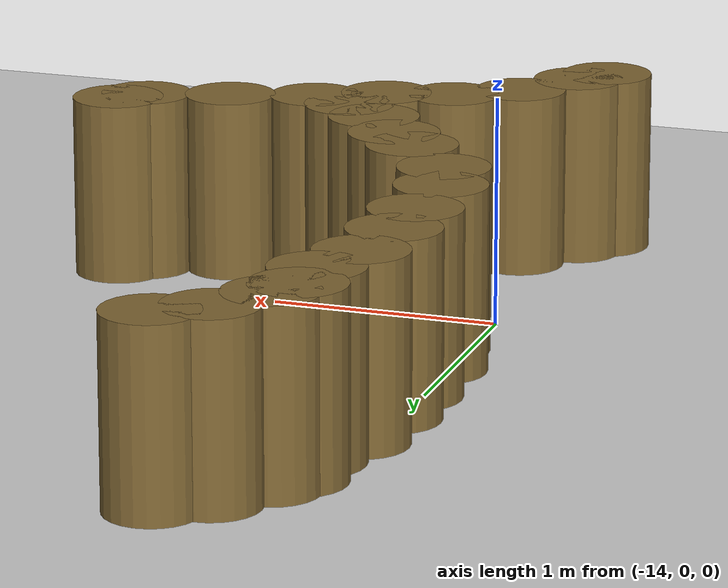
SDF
<sdf version="1.6">
 <world name="default">
  <model name="ground_plane">
   <static>1</static>
   <link name="link">
    <collision name="collision">
     <geometry><plane><normal>0 0 1</normal><size>100 100</size></plane></geometry>
     <surface><friction><ode><mu>100</mu><mu2>50</mu2></ode></friction></surface>
    </collision>
    <visual name="visual">
     <cast_shadows>0</cast_shadows>
     <geometry><plane><normal>0 0 1</normal><size>100 100</size></plane></geometry>
     <material>
      <script><uri>file://media/materials/scripts/gazebo.material</uri><name>Gazebo/Grey</name></script>
     </material>
    </visual>
   </link>
  </model>
  <model name="mini_cylinder_0_clone_0_clone_clone_clone_clone_3_clone_20_clone">
   <link name="link">
    <inertial>
     <mass>1</mass>
     <inertia><ixx>0.145833</ixx><ixy>0</ixy><ixz>0</ixz><iyy>0.145833</iyy><iyz>0</iyz><izz>0.125</izz></inertia>
    </inertial>
    <visual name="visual">
     <geometry><cylinder><radius>0.2</radius><length>0.8</length></cylinder></geometry>
     <material>
      <script><name>Gazebo/Grey</name><uri>file://media/materials/scripts/gazebo.material</uri></script>
      <shader type="vertex"><normal_map>__default__</normal_map></shader>
      <ambient>0.5 0.4 0.2 1</ambient>
      <diffuse>0.7 0.7 0.7 1</diffuse>
      <specular>0.01 0.01 0.01 1</specular>
      <emissive>0 0 0 1</emissive>
     </material>
    </visual>
    <collision name="collision">
     <geometry><cylinder><radius>0.2</radius><length>0.8</length></cylinder></geometry>
     <surface>
      <friction>
       <ode><mu>1</mu><mu2>1</mu2><fdir1>0 0 0</fdir1><slip1>0</slip1><slip2>0</slip2></ode>
       <torsional>
        <coefficient>1</coefficient>
        <patch_radius>0</patch_radius>
        <surface_radius>0</surface_radius>
        <use_patch_radius>1</use_patch_radius>
        <ode><slip>0</slip></ode>
       </torsional>
      </friction>
      <bounce><restitution_coefficient>0</restitution_coefficient><threshold>1e+06</threshold></bounce>
      <contact>
       <collide_without_contact>0</collide_without_contact>
       <collide_without_contact_bitmask>1</collide_without_contact_bitmask>
       <collide_bitmask>1</collide_bitmask>
       <ode>
        <soft_cfm>0</soft_cfm>
        <soft_erp>0.2</soft_erp>
        <kp>1e+13</kp>
        <kd>1</kd>
        <max_vel>0.01</max_vel>
        <min_depth>0</min_depth>
       </ode>
       <bullet>
        <split_impulse>1</split_impulse>
        <split_impulse_penetration_threshold>-0.01</split_impulse_penetration_threshold>
        <soft_cfm>0</soft_cfm>
        <soft_erp>0.2</soft_erp>
        <kp>1e+13</kp>
        <kd>1</kd>
       </bullet>
      </contact>
     </surface>
    </collision>
   </link>
   <static>1</static>
   <pose>-14.121 -1.29709 0.4 0 -0 0</pose>
  </model>
  <model name="mini_cylinder_0_clone_0_clone_clone_clone_clone_3_clone_20_clone_0">
   <link name="link">
    <inertial>
     <mass>1</mass>
     <inertia><ixx>0.145833</ixx><ixy>0</ixy><ixz>0</ixz><iyy>0.145833</iyy><iyz>0</iyz><izz>0.125</izz></inertia>
    </inertial>
    <visual name="visual">
     <geometry><cylinder><radius>0.2</radius><length>0.8</length></cylinder></geometry>
     <material>
      <script><name>Gazebo/Grey</name><uri>file://media/materials/scripts/gazebo.material</uri></script>
      <shader type="vertex"><normal_map>__default__</normal_map></shader>
      <ambient>0.5 0.4 0.2 1</ambient>
      <diffuse>0.7 0.7 0.7 1</diffuse>
      <specular>0.01 0.01 0.01 1</specular>
      <emissive>0 0 0 1</emissive>
     </material>
    </visual>
    <collision name="collision">
     <geometry><cylinder><radius>0.2</radius><length>0.8</length></cylinder></geometry>
     <surface>
      <friction>
       <ode><mu>1</mu><mu2>1</mu2><fdir1>0 0 0</fdir1><slip1>0</slip1><slip2>0</slip2></ode>
       <torsional>
        <coefficient>1</coefficient>
        <patch_radius>0</patch_radius>
        <surface_radius>0</surface_radius>
        <use_patch_radius>1</use_patch_radius>
        <ode><slip>0</slip></ode>
       </torsional>
      </friction>
      <bounce><restitution_coefficient>0</restitution_coefficient><threshold>1e+06</threshold></bounce>
      <contact>
       <collide_without_contact>0</collide_without_contact>
       <collide_without_contact_bitmask>1</collide_without_contact_bitmask>
       <collide_bitmask>1</collide_bitmask>
       <ode>
        <soft_cfm>0</soft_cfm>
        <soft_erp>0.2</soft_erp>
        <kp>1e+13</kp>
        <kd>1</kd>
        <max_vel>0.01</max_vel>
        <min_depth>0</min_depth>
       </ode>
       <bullet>
        <split_impulse>1</split_impulse>
        <split_impulse_penetration_threshold>-0.01</split_impulse_penetration_threshold>
        <soft_cfm>0</soft_cfm>
        <soft_erp>0.2</soft_erp>
        <kp>1e+13</kp>
        <kd>1</kd>
       </bullet>
      </contact>
     </surface>
    </collision>
   </link>
   <static>1</static>
   <pose>-14.0258 -1.16567 0.4 0 -0 0</pose>
  </model>
  <model name="mini_cylinder_0_clone_0_clone_clone_clone_clone_3_clone_20_clone_1">
   <link name="link">
    <inertial>
     <mass>1</mass>
     <inertia><ixx>0.145833</ixx><ixy>0</ixy><ixz>0</ixz><iyy>0.145833</iyy><iyz>0</iyz><izz>0.125</izz></inertia>
    </inertial>
    <visual name="visual">
     <geometry><cylinder><radius>0.2</radius><length>0.8</length></cylinder></geometry>
     <material>
      <script><name>Gazebo/Grey</name><uri>file://media/materials/scripts/gazebo.material</uri></script>
      <shader type="vertex"><normal_map>__default__</normal_map></shader>
      <ambient>0.5 0.4 0.2 1</ambient>
      <diffuse>0.7 0.7 0.7 1</diffuse>
      <specular>0.01 0.01 0.01 1</specular>
      <emissive>0 0 0 1</emissive>
     </material>
    </visual>
    <collision name="collision">
     <geometry><cylinder><radius>0.2</radius><length>0.8</length></cylinder></geometry>
     <surface>
      <friction>
       <ode><mu>1</mu><mu2>1</mu2><fdir1>0 0 0</fdir1><slip1>0</slip1><slip2>0</slip2></ode>
       <torsional>
        <coefficient>1</coefficient>
        <patch_radius>0</patch_radius>
        <surface_radius>0</surface_radius>
        <use_patch_radius>1</use_patch_radius>
        <ode><slip>0</slip></ode>
       </torsional>
      </friction>
      <bounce><restitution_coefficient>0</restitution_coefficient><threshold>1e+06</threshold></bounce>
      <contact>
       <collide_without_contact>0</collide_without_contact>
       <collide_without_contact_bitmask>1</collide_without_contact_bitmask>
       <collide_bitmask>1</collide_bitmask>
       <ode>
        <soft_cfm>0</soft_cfm>
        <soft_erp>0.2</soft_erp>
        <kp>1e+13</kp>
        <kd>1</kd>
        <max_vel>0.01</max_vel>
        <min_depth>0</min_depth>
       </ode>
       <bullet>
        <split_impulse>1</split_impulse>
        <split_impulse_penetration_threshold>-0.01</split_impulse_penetration_threshold>
        <soft_cfm>0</soft_cfm>
        <soft_erp>0.2</soft_erp>
        <kp>1e+13</kp>
        <kd>1</kd>
       </bullet>
      </contact>
     </surface>
    </collision>
   </link>
   <static>1</static>
   <pose>-13.8351 -0.902632 0.4 0 -0 0</pose>
  </model>
  <model name="mini_cylinder_0_clone_0_clone_clone_clone_clone_3_clone_20_clone_2">
   <link name="link">
    <inertial>
     <mass>1</mass>
     <inertia><ixx>0.145833</ixx><ixy>0</ixy><ixz>0</ixz><iyy>0.145833</iyy><iyz>0</iyz><izz>0.125</izz></inertia>
    </inertial>
    <visual name="visual">
     <geometry><cylinder><radius>0.2</radius><length>0.8</length></cylinder></geometry>
     <material>
      <script><name>Gazebo/Grey</name><uri>file://media/materials/scripts/gazebo.material</uri></script>
      <shader type="vertex"><normal_map>__default__</normal_map></shader>
      <ambient>0.5 0.4 0.2 1</ambient>
      <diffuse>0.7 0.7 0.7 1</diffuse>
      <specular>0.01 0.01 0.01 1</specular>
      <emissive>0 0 0 1</emissive>
     </material>
    </visual>
    <collision name="collision">
     <geometry><cylinder><radius>0.2</radius><length>0.8</length></cylinder></geometry>
     <surface>
      <friction>
       <ode><mu>1</mu><mu2>1</mu2><fdir1>0 0 0</fdir1><slip1>0</slip1><slip2>0</slip2></ode>
       <torsional>
        <coefficient>1</coefficient>
        <patch_radius>0</patch_radius>
        <surface_radius>0</surface_radius>
        <use_patch_radius>1</use_patch_radius>
        <ode><slip>0</slip></ode>
       </torsional>
      </friction>
      <bounce><restitution_coefficient>0</restitution_coefficient><threshold>1e+06</threshold></bounce>
      <contact>
       <collide_without_contact>0</collide_without_contact>
       <collide_without_contact_bitmask>1</collide_without_contact_bitmask>
       <collide_bitmask>1</collide_bitmask>
       <ode>
        <soft_cfm>0</soft_cfm>
        <soft_erp>0.2</soft_erp>
        <kp>1e+13</kp>
        <kd>1</kd>
        <max_vel>0.01</max_vel>
        <min_depth>0</min_depth>
       </ode>
       <bullet>
        <split_impulse>1</split_impulse>
        <split_impulse_penetration_threshold>-0.01</split_impulse_penetration_threshold>
        <soft_cfm>0</soft_cfm>
        <soft_erp>0.2</soft_erp>
        <kp>1e+13</kp>
        <kd>1</kd>
       </bullet>
      </contact>
     </surface>
    </collision>
   </link>
   <static>1</static>
   <pose>-13.5779 -0.736125 0.4 0 -0 0</pose>
  </model>
  <model name="mini_cylinder_0_clone_0_clone_clone_clone_clone_3_clone_20_clone_3">
   <link name="link">
    <inertial>
     <mass>1</mass>
     <inertia><ixx>0.145833</ixx><ixy>0</ixy><ixz>0</ixz><iyy>0.145833</iyy><iyz>0</iyz><izz>0.125</izz></inertia>
    </inertial>
    <visual name="visual">
     <geometry><cylinder><radius>0.2</radius><length>0.8</length></cylinder></geometry>
     <material>
      <script><name>Gazebo/Grey</name><uri>file://media/materials/scripts/gazebo.material</uri></script>
      <shader type="vertex"><normal_map>__default__</normal_map></shader>
      <ambient>0.5 0.4 0.2 1</ambient>
      <diffuse>0.7 0.7 0.7 1</diffuse>
      <specular>0.01 0.01 0.01 1</specular>
      <emissive>0 0 0 1</emissive>
     </material>
    </visual>
    <collision name="collision">
     <geometry><cylinder><radius>0.2</radius><length>0.8</length></cylinder></geometry>
     <surface>
      <friction>
       <ode><mu>1</mu><mu2>1</mu2><fdir1>0 0 0</fdir1><slip1>0</slip1><slip2>0</slip2></ode>
       <torsional>
        <coefficient>1</coefficient>
        <patch_radius>0</patch_radius>
        <surface_radius>0</surface_radius>
        <use_patch_radius>1</use_patch_radius>
        <ode><slip>0</slip></ode>
       </torsional>
      </friction>
      <bounce><restitution_coefficient>0</restitution_coefficient><threshold>1e+06</threshold></bounce>
      <contact>
       <collide_without_contact>0</collide_without_contact>
       <collide_without_contact_bitmask>1</collide_without_contact_bitmask>
       <collide_bitmask>1</collide_bitmask>
       <ode>
        <soft_cfm>0</soft_cfm>
        <soft_erp>0.2</soft_erp>
        <kp>1e+13</kp>
        <kd>1</kd>
        <max_vel>0.01</max_vel>
        <min_depth>0</min_depth>
       </ode>
       <bullet>
        <split_impulse>1</split_impulse>
        <split_impulse_penetration_threshold>-0.01</split_impulse_penetration_threshold>
        <soft_cfm>0</soft_cfm>
        <soft_erp>0.2</soft_erp>
        <kp>1e+13</kp>
        <kd>1</kd>
       </bullet>
      </contact>
     </surface>
    </collision>
   </link>
   <static>1</static>
   <pose>-13.2871 -0.666545 0.4 0 -0 0</pose>
  </model>
  <model name="mini_cylinder_0_clone_0_clone_clone_clone_clone_3_clone_20_clone_4">
   <link name="link">
    <inertial>
     <mass>1</mass>
     <inertia><ixx>0.145833</ixx><ixy>0</ixy><ixz>0</ixz><iyy>0.145833</iyy><iyz>0</iyz><izz>0.125</izz></inertia>
    </inertial>
    <visual name="visual">
     <geometry><cylinder><radius>0.2</radius><length>0.8</length></cylinder></geometry>
     <material>
      <script><name>Gazebo/Grey</name><uri>file://media/materials/scripts/gazebo.material</uri></script>
      <shader type="vertex"><normal_map>__default__</normal_map></shader>
      <ambient>0.5 0.4 0.2 1</ambient>
      <diffuse>0.7 0.7 0.7 1</diffuse>
      <specular>0.01 0.01 0.01 1</specular>
      <emissive>0 0 0 1</emissive>
     </material>
    </visual>
    <collision name="collision">
     <geometry><cylinder><radius>0.2</radius><length>0.8</length></cylinder></geometry>
     <surface>
      <friction>
       <ode><mu>1</mu><mu2>1</mu2><fdir1>0 0 0</fdir1><slip1>0</slip1><slip2>0</slip2></ode>
       <torsional>
        <coefficient>1</coefficient>
        <patch_radius>0</patch_radius>
        <surface_radius>0</surface_radius>
        <use_patch_radius>1</use_patch_radius>
        <ode><slip>0</slip></ode>
       </torsional>
      </friction>
      <bounce><restitution_coefficient>0</restitution_coefficient><threshold>1e+06</threshold></bounce>
      <contact>
       <collide_without_contact>0</collide_without_contact>
       <collide_without_contact_bitmask>1</collide_without_contact_bitmask>
       <collide_bitmask>1</collide_bitmask>
       <ode>
        <soft_cfm>0</soft_cfm>
        <soft_erp>0.2</soft_erp>
        <kp>1e+13</kp>
        <kd>1</kd>
        <max_vel>0.01</max_vel>
        <min_depth>0</min_depth>
       </ode>
       <bullet>
        <split_impulse>1</split_impulse>
        <split_impulse_penetration_threshold>-0.01</split_impulse_penetration_threshold>
        <soft_cfm>0</soft_cfm>
        <soft_erp>0.2</soft_erp>
        <kp>1e+13</kp>
        <kd>1</kd>
       </bullet>
      </contact>
     </surface>
    </collision>
   </link>
   <static>1</static>
   <pose>-13 -0.531483 0.4 0 -0 0</pose>
  </model>
  <model name="mini_cylinder_0_clone_0_clone_clone_clone_clone_3_clone_20_clone_5">
   <link name="link">
    <inertial>
     <mass>1</mass>
     <inertia><ixx>0.145833</ixx><ixy>0</ixy><ixz>0</ixz><iyy>0.145833</iyy><iyz>0</iyz><izz>0.125</izz></inertia>
    </inertial>
    <visual name="visual">
     <geometry><cylinder><radius>0.2</radius><length>0.8</length></cylinder></geometry>
     <material>
      <script><name>Gazebo/Grey</name><uri>file://media/materials/scripts/gazebo.material</uri></script>
      <shader type="vertex"><normal_map>__default__</normal_map></shader>
      <ambient>0.5 0.4 0.2 1</ambient>
      <diffuse>0.7 0.7 0.7 1</diffuse>
      <specular>0.01 0.01 0.01 1</specular>
      <emissive>0 0 0 1</emissive>
     </material>
    </visual>
    <collision name="collision">
     <geometry><cylinder><radius>0.2</radius><length>0.8</length></cylinder></geometry>
     <surface>
      <friction>
       <ode><mu>1</mu><mu2>1</mu2><fdir1>0 0 0</fdir1><slip1>0</slip1><slip2>0</slip2></ode>
       <torsional>
        <coefficient>1</coefficient>
        <patch_radius>0</patch_radius>
        <surface_radius>0</surface_radius>
        <use_patch_radius>1</use_patch_radius>
        <ode><slip>0</slip></ode>
       </torsional>
      </friction>
      <bounce><restitution_coefficient>0</restitution_coefficient><threshold>1e+06</threshold></bounce>
      <contact>
       <collide_without_contact>0</collide_without_contact>
       <collide_without_contact_bitmask>1</collide_without_contact_bitmask>
       <collide_bitmask>1</collide_bitmask>
       <ode>
        <soft_cfm>0</soft_cfm>
        <soft_erp>0.2</soft_erp>
        <kp>1e+13</kp>
        <kd>1</kd>
        <max_vel>0.01</max_vel>
        <min_depth>0</min_depth>
       </ode>
       <bullet>
        <split_impulse>1</split_impulse>
        <split_impulse_penetration_threshold>-0.01</split_impulse_penetration_threshold>
        <soft_cfm>0</soft_cfm>
        <soft_erp>0.2</soft_erp>
        <kp>1e+13</kp>
        <kd>1</kd>
       </bullet>
      </contact>
     </surface>
    </collision>
   </link>
   <static>1</static>
   <pose>-12.6404 -0.428911 0.4 0 -0 0</pose>
  </model>
  <model name="mini_cylinder_0_clone_0_clone_clone_clone_clone_3_clone_20_clone_6">
   <link name="link">
    <inertial>
     <mass>1</mass>
     <inertia><ixx>0.145833</ixx><ixy>0</ixy><ixz>0</ixz><iyy>0.145833</iyy><iyz>0</iyz><izz>0.125</izz></inertia>
    </inertial>
    <visual name="visual">
     <geometry><cylinder><radius>0.2</radius><length>0.8</length></cylinder></geometry>
     <material>
      <script><name>Gazebo/Grey</name><uri>file://media/materials/scripts/gazebo.material</uri></script>
      <shader type="vertex"><normal_map>__default__</normal_map></shader>
      <ambient>0.5 0.4 0.2 1</ambient>
      <diffuse>0.7 0.7 0.7 1</diffuse>
      <specular>0.01 0.01 0.01 1</specular>
      <emissive>0 0 0 1</emissive>
     </material>
    </visual>
    <collision name="collision">
     <geometry><cylinder><radius>0.2</radius><length>0.8</length></cylinder></geometry>
     <surface>
      <friction>
       <ode><mu>1</mu><mu2>1</mu2><fdir1>0 0 0</fdir1><slip1>0</slip1><slip2>0</slip2></ode>
       <torsional>
        <coefficient>1</coefficient>
        <patch_radius>0</patch_radius>
        <surface_radius>0</surface_radius>
        <use_patch_radius>1</use_patch_radius>
        <ode><slip>0</slip></ode>
       </torsional>
      </friction>
      <bounce><restitution_coefficient>0</restitution_coefficient><threshold>1e+06</threshold></bounce>
      <contact>
       <collide_without_contact>0</collide_without_contact>
       <collide_without_contact_bitmask>1</collide_without_contact_bitmask>
       <collide_bitmask>1</collide_bitmask>
       <ode>
        <soft_cfm>0</soft_cfm>
        <soft_erp>0.2</soft_erp>
        <kp>1e+13</kp>
        <kd>1</kd>
        <max_vel>0.01</max_vel>
        <min_depth>0</min_depth>
       </ode>
       <bullet>
        <split_impulse>1</split_impulse>
        <split_impulse_penetration_threshold>-0.01</split_impulse_penetration_threshold>
        <soft_cfm>0</soft_cfm>
        <soft_erp>0.2</soft_erp>
        <kp>1e+13</kp>
        <kd>1</kd>
       </bullet>
      </contact>
     </surface>
    </collision>
   </link>
   <static>1</static>
   <pose>-12.2846 -0.325811 0.4 0 -0 0</pose>
  </model>
  <model name="mini_cylinder_0_clone_0_clone_clone_clone_clone_3_clone_20_clone_24">
   <link name="link">
    <inertial>
     <mass>1</mass>
     <inertia><ixx>0.145833</ixx><ixy>0</ixy><ixz>0</ixz><iyy>0.145833</iyy><iyz>0</iyz><izz>0.125</izz></inertia>
    </inertial>
    <visual name="visual">
     <geometry><cylinder><radius>0.2</radius><length>0.8</length></cylinder></geometry>
     <material>
      <script><name>Gazebo/Grey</name><uri>file://media/materials/scripts/gazebo.material</uri></script>
      <shader type="vertex"><normal_map>__default__</normal_map></shader>
      <ambient>0.5 0.4 0.2 1</ambient>
      <diffuse>0.7 0.7 0.7 1</diffuse>
      <specular>0.01 0.01 0.01 1</specular>
      <emissive>0 0 0 1</emissive>
     </material>
    </visual>
    <collision name="collision">
     <geometry><cylinder><radius>0.2</radius><length>0.8</length></cylinder></geometry>
     <surface>
      <friction>
       <ode><mu>1</mu><mu2>1</mu2><fdir1>0 0 0</fdir1><slip1>0</slip1><slip2>0</slip2></ode>
       <torsional>
        <coefficient>1</coefficient>
        <patch_radius>0</patch_radius>
        <surface_radius>0</surface_radius>
        <use_patch_radius>1</use_patch_radius>
        <ode><slip>0</slip></ode>
       </torsional>
      </friction>
      <bounce><restitution_coefficient>0</restitution_coefficient><threshold>1e+06</threshold></bounce>
      <contact>
       <collide_without_contact>0</collide_without_contact>
       <collide_without_contact_bitmask>1</collide_without_contact_bitmask>
       <collide_bitmask>1</collide_bitmask>
       <ode>
        <soft_cfm>0</soft_cfm>
        <soft_erp>0.2</soft_erp>
        <kp>1e+13</kp>
        <kd>1</kd>
        <max_vel>0.01</max_vel>
        <min_depth>0</min_depth>
       </ode>
       <bullet>
        <split_impulse>1</split_impulse>
        <split_impulse_penetration_threshold>-0.01</split_impulse_penetration_threshold>
        <soft_cfm>0</soft_cfm>
        <soft_erp>0.2</soft_erp>
        <kp>1e+13</kp>
        <kd>1</kd>
       </bullet>
      </contact>
     </surface>
    </collision>
   </link>
   <static>1</static>
   <pose>-13.4377 2.61527 0.4 0 -0 0</pose>
  </model>
  <model name="mini_cylinder_0_clone_0_clone_clone_clone_clone_3_clone_20_clone_25">
   <link name="link">
    <inertial>
     <mass>1</mass>
     <inertia><ixx>0.145833</ixx><ixy>0</ixy><ixz>0</ixz><iyy>0.145833</iyy><iyz>0</iyz><izz>0.125</izz></inertia>
    </inertial>
    <visual name="visual">
     <geometry><cylinder><radius>0.2</radius><length>0.8</length></cylinder></geometry>
     <material>
      <script><name>Gazebo/Grey</name><uri>file://media/materials/scripts/gazebo.material</uri></script>
      <shader type="vertex"><normal_map>__default__</normal_map></shader>
      <ambient>0.5 0.4 0.2 1</ambient>
      <diffuse>0.7 0.7 0.7 1</diffuse>
      <specular>0.01 0.01 0.01 1</specular>
      <emissive>0 0 0 1</emissive>
     </material>
    </visual>
    <collision name="collision">
     <geometry><cylinder><radius>0.2</radius><length>0.8</length></cylinder></geometry>
     <surface>
      <friction>
       <ode><mu>1</mu><mu2>1</mu2><fdir1>0 0 0</fdir1><slip1>0</slip1><slip2>0</slip2></ode>
       <torsional>
        <coefficient>1</coefficient>
        <patch_radius>0</patch_radius>
        <surface_radius>0</surface_radius>
        <use_patch_radius>1</use_patch_radius>
        <ode><slip>0</slip></ode>
       </torsional>
      </friction>
      <bounce><restitution_coefficient>0</restitution_coefficient><threshold>1e+06</threshold></bounce>
      <contact>
       <collide_without_contact>0</collide_without_contact>
       <collide_without_contact_bitmask>1</collide_without_contact_bitmask>
       <collide_bitmask>1</collide_bitmask>
       <ode>
        <soft_cfm>0</soft_cfm>
        <soft_erp>0.2</soft_erp>
        <kp>1e+13</kp>
        <kd>1</kd>
        <max_vel>0.01</max_vel>
        <min_depth>0</min_depth>
       </ode>
       <bullet>
        <split_impulse>1</split_impulse>
        <split_impulse_penetration_threshold>-0.01</split_impulse_penetration_threshold>
        <soft_cfm>0</soft_cfm>
        <soft_erp>0.2</soft_erp>
        <kp>1e+13</kp>
        <kd>1</kd>
       </bullet>
      </contact>
     </surface>
    </collision>
   </link>
   <static>1</static>
   <pose>-13.6303 2.482 0.4 0 -0 0</pose>
  </model>
  <model name="mini_cylinder_0_clone_0_clone_clone_clone_clone_3_clone_20_clone_26">
   <link name="link">
    <inertial>
     <mass>1</mass>
     <inertia><ixx>0.145833</ixx><ixy>0</ixy><ixz>0</ixz><iyy>0.145833</iyy><iyz>0</iyz><izz>0.125</izz></inertia>
    </inertial>
    <visual name="visual">
     <geometry><cylinder><radius>0.2</radius><length>0.8</length></cylinder></geometry>
     <material>
      <script><name>Gazebo/Grey</name><uri>file://media/materials/scripts/gazebo.material</uri></script>
      <shader type="vertex"><normal_map>__default__</normal_map></shader>
      <ambient>0.5 0.4 0.2 1</ambient>
      <diffuse>0.7 0.7 0.7 1</diffuse>
      <specular>0.01 0.01 0.01 1</specular>
      <emissive>0 0 0 1</emissive>
     </material>
    </visual>
    <collision name="collision">
     <geometry><cylinder><radius>0.2</radius><length>0.8</length></cylinder></geometry>
     <surface>
      <friction>
       <ode><mu>1</mu><mu2>1</mu2><fdir1>0 0 0</fdir1><slip1>0</slip1><slip2>0</slip2></ode>
       <torsional>
        <coefficient>1</coefficient>
        <patch_radius>0</patch_radius>
        <surface_radius>0</surface_radius>
        <use_patch_radius>1</use_patch_radius>
        <ode><slip>0</slip></ode>
       </torsional>
      </friction>
      <bounce><restitution_coefficient>0</restitution_coefficient><threshold>1e+06</threshold></bounce>
      <contact>
       <collide_without_contact>0</collide_without_contact>
       <collide_without_contact_bitmask>1</collide_without_contact_bitmask>
       <collide_bitmask>1</collide_bitmask>
       <ode>
        <soft_cfm>0</soft_cfm>
        <soft_erp>0.2</soft_erp>
        <kp>1e+13</kp>
        <kd>1</kd>
        <max_vel>0.01</max_vel>
        <min_depth>0</min_depth>
       </ode>
       <bullet>
        <split_impulse>1</split_impulse>
        <split_impulse_penetration_threshold>-0.01</split_impulse_penetration_threshold>
        <soft_cfm>0</soft_cfm>
        <soft_erp>0.2</soft_erp>
        <kp>1e+13</kp>
        <kd>1</kd>
       </bullet>
      </contact>
     </surface>
    </collision>
   </link>
   <static>1</static>
   <pose>-13.7894 2.25201 0.4 0 -0 0</pose>
  </model>
  <model name="mini_cylinder_0_clone_0_clone_clone_clone_clone_3_clone_20_clone_27">
   <link name="link">
    <inertial>
     <mass>1</mass>
     <inertia><ixx>0.145833</ixx><ixy>0</ixy><ixz>0</ixz><iyy>0.145833</iyy><iyz>0</iyz><izz>0.125</izz></inertia>
    </inertial>
    <visual name="visual">
     <geometry><cylinder><radius>0.2</radius><length>0.8</length></cylinder></geometry>
     <material>
      <script><name>Gazebo/Grey</name><uri>file://media/materials/scripts/gazebo.material</uri></script>
      <shader type="vertex"><normal_map>__default__</normal_map></shader>
      <ambient>0.5 0.4 0.2 1</ambient>
      <diffuse>0.7 0.7 0.7 1</diffuse>
      <specular>0.01 0.01 0.01 1</specular>
      <emissive>0 0 0 1</emissive>
     </material>
    </visual>
    <collision name="collision">
     <geometry><cylinder><radius>0.2</radius><length>0.8</length></cylinder></geometry>
     <surface>
      <friction>
       <ode><mu>1</mu><mu2>1</mu2><fdir1>0 0 0</fdir1><slip1>0</slip1><slip2>0</slip2></ode>
       <torsional>
        <coefficient>1</coefficient>
        <patch_radius>0</patch_radius>
        <surface_radius>0</surface_radius>
        <use_patch_radius>1</use_patch_radius>
        <ode><slip>0</slip></ode>
       </torsional>
      </friction>
      <bounce><restitution_coefficient>0</restitution_coefficient><threshold>1e+06</threshold></bounce>
      <contact>
       <collide_without_contact>0</collide_without_contact>
       <collide_without_contact_bitmask>1</collide_without_contact_bitmask>
       <collide_bitmask>1</collide_bitmask>
       <ode>
        <soft_cfm>0</soft_cfm>
        <soft_erp>0.2</soft_erp>
        <kp>1e+13</kp>
        <kd>1</kd>
        <max_vel>0.01</max_vel>
        <min_depth>0</min_depth>
       </ode>
       <bullet>
        <split_impulse>1</split_impulse>
        <split_impulse_penetration_threshold>-0.01</split_impulse_penetration_threshold>
        <soft_cfm>0</soft_cfm>
        <soft_erp>0.2</soft_erp>
        <kp>1e+13</kp>
        <kd>1</kd>
       </bullet>
      </contact>
     </surface>
    </collision>
   </link>
   <static>1</static>
   <pose>-13.8483 1.89327 0.4 0 -0 0</pose>
  </model>
  <model name="mini_cylinder_0_clone_0_clone_clone_clone_clone_3_clone_20_clone_28">
   <link name="link">
    <inertial>
     <mass>1</mass>
     <inertia><ixx>0.145833</ixx><ixy>0</ixy><ixz>0</ixz><iyy>0.145833</iyy><iyz>0</iyz><izz>0.125</izz></inertia>
    </inertial>
    <visual name="visual">
     <geometry><cylinder><radius>0.2</radius><length>0.8</length></cylinder></geometry>
     <material>
      <script><name>Gazebo/Grey</name><uri>file://media/materials/scripts/gazebo.material</uri></script>
      <shader type="vertex"><normal_map>__default__</normal_map></shader>
      <ambient>0.5 0.4 0.2 1</ambient>
      <diffuse>0.7 0.7 0.7 1</diffuse>
      <specular>0.01 0.01 0.01 1</specular>
      <emissive>0 0 0 1</emissive>
     </material>
    </visual>
    <collision name="collision">
     <geometry><cylinder><radius>0.2</radius><length>0.8</length></cylinder></geometry>
     <surface>
      <friction>
       <ode><mu>1</mu><mu2>1</mu2><fdir1>0 0 0</fdir1><slip1>0</slip1><slip2>0</slip2></ode>
       <torsional>
        <coefficient>1</coefficient>
        <patch_radius>0</patch_radius>
        <surface_radius>0</surface_radius>
        <use_patch_radius>1</use_patch_radius>
        <ode><slip>0</slip></ode>
       </torsional>
      </friction>
      <bounce><restitution_coefficient>0</restitution_coefficient><threshold>1e+06</threshold></bounce>
      <contact>
       <collide_without_contact>0</collide_without_contact>
       <collide_without_contact_bitmask>1</collide_without_contact_bitmask>
       <collide_bitmask>1</collide_bitmask>
       <ode>
        <soft_cfm>0</soft_cfm>
        <soft_erp>0.2</soft_erp>
        <kp>1e+13</kp>
        <kd>1</kd>
        <max_vel>0.01</max_vel>
        <min_depth>0</min_depth>
       </ode>
       <bullet>
        <split_impulse>1</split_impulse>
        <split_impulse_penetration_threshold>-0.01</split_impulse_penetration_threshold>
        <soft_cfm>0</soft_cfm>
        <soft_erp>0.2</soft_erp>
        <kp>1e+13</kp>
        <kd>1</kd>
       </bullet>
      </contact>
     </surface>
    </collision>
   </link>
   <static>1</static>
   <pose>-13.9409 1.63155 0.4 0 -0 0</pose>
  </model>
  <model name="mini_cylinder_0_clone_0_clone_clone_clone_clone_3_clone_20_clone_29">
   <link name="link">
    <inertial>
     <mass>1</mass>
     <inertia><ixx>0.145833</ixx><ixy>0</ixy><ixz>0</ixz><iyy>0.145833</iyy><iyz>0</iyz><izz>0.125</izz></inertia>
    </inertial>
    <visual name="visual">
     <geometry><cylinder><radius>0.2</radius><length>0.8</length></cylinder></geometry>
     <material>
      <script><name>Gazebo/Grey</name><uri>file://media/materials/scripts/gazebo.material</uri></script>
      <shader type="vertex"><normal_map>__default__</normal_map></shader>
      <ambient>0.5 0.4 0.2 1</ambient>
      <diffuse>0.7 0.7 0.7 1</diffuse>
      <specular>0.01 0.01 0.01 1</specular>
      <emissive>0 0 0 1</emissive>
     </material>
    </visual>
    <collision name="collision">
     <geometry><cylinder><radius>0.2</radius><length>0.8</length></cylinder></geometry>
     <surface>
      <friction>
       <ode><mu>1</mu><mu2>1</mu2><fdir1>0 0 0</fdir1><slip1>0</slip1><slip2>0</slip2></ode>
       <torsional>
        <coefficient>1</coefficient>
        <patch_radius>0</patch_radius>
        <surface_radius>0</surface_radius>
        <use_patch_radius>1</use_patch_radius>
        <ode><slip>0</slip></ode>
       </torsional>
      </friction>
      <bounce><restitution_coefficient>0</restitution_coefficient><threshold>1e+06</threshold></bounce>
      <contact>
       <collide_without_contact>0</collide_without_contact>
       <collide_without_contact_bitmask>1</collide_without_contact_bitmask>
       <collide_bitmask>1</collide_bitmask>
       <ode>
        <soft_cfm>0</soft_cfm>
        <soft_erp>0.2</soft_erp>
        <kp>1e+13</kp>
        <kd>1</kd>
        <max_vel>0.01</max_vel>
        <min_depth>0</min_depth>
       </ode>
       <bullet>
        <split_impulse>1</split_impulse>
        <split_impulse_penetration_threshold>-0.01</split_impulse_penetration_threshold>
        <soft_cfm>0</soft_cfm>
        <soft_erp>0.2</soft_erp>
        <kp>1e+13</kp>
        <kd>1</kd>
       </bullet>
      </contact>
     </surface>
    </collision>
   </link>
   <static>1</static>
   <pose>-13.9687 1.3061 0.4 0 -0 0</pose>
  </model>
  <model name="mini_cylinder_0_clone_0_clone_clone_clone_clone_3_clone_20_clone_30">
   <link name="link">
    <inertial>
     <mass>1</mass>
     <inertia><ixx>0.145833</ixx><ixy>0</ixy><ixz>0</ixz><iyy>0.145833</iyy><iyz>0</iyz><izz>0.125</izz></inertia>
    </inertial>
    <visual name="visual">
     <geometry><cylinder><radius>0.2</radius><length>0.8</length></cylinder></geometry>
     <material>
      <script><name>Gazebo/Grey</name><uri>file://media/materials/scripts/gazebo.material</uri></script>
      <shader type="vertex"><normal_map>__default__</normal_map></shader>
      <ambient>0.5 0.4 0.2 1</ambient>
      <diffuse>0.7 0.7 0.7 1</diffuse>
      <specular>0.01 0.01 0.01 1</specular>
      <emissive>0 0 0 1</emissive>
     </material>
    </visual>
    <collision name="collision">
     <geometry><cylinder><radius>0.2</radius><length>0.8</length></cylinder></geometry>
     <surface>
      <friction>
       <ode><mu>1</mu><mu2>1</mu2><fdir1>0 0 0</fdir1><slip1>0</slip1><slip2>0</slip2></ode>
       <torsional>
        <coefficient>1</coefficient>
        <patch_radius>0</patch_radius>
        <surface_radius>0</surface_radius>
        <use_patch_radius>1</use_patch_radius>
        <ode><slip>0</slip></ode>
       </torsional>
      </friction>
      <bounce><restitution_coefficient>0</restitution_coefficient><threshold>1e+06</threshold></bounce>
      <contact>
       <collide_without_contact>0</collide_without_contact>
       <collide_without_contact_bitmask>1</collide_without_contact_bitmask>
       <collide_bitmask>1</collide_bitmask>
       <ode>
        <soft_cfm>0</soft_cfm>
        <soft_erp>0.2</soft_erp>
        <kp>1e+13</kp>
        <kd>1</kd>
        <max_vel>0.01</max_vel>
        <min_depth>0</min_depth>
       </ode>
       <bullet>
        <split_impulse>1</split_impulse>
        <split_impulse_penetration_threshold>-0.01</split_impulse_penetration_threshold>
        <soft_cfm>0</soft_cfm>
        <soft_erp>0.2</soft_erp>
        <kp>1e+13</kp>
        <kd>1</kd>
       </bullet>
      </contact>
     </surface>
    </collision>
   </link>
   <static>1</static>
   <pose>-13.964 1.01349 0.4 0 -0 0</pose>
  </model>
  <model name="mini_cylinder_0_clone_0_clone_clone_clone_clone_3_clone_20_clone_31">
   <link name="link">
    <inertial>
     <mass>1</mass>
     <inertia><ixx>0.145833</ixx><ixy>0</ixy><ixz>0</ixz><iyy>0.145833</iyy><iyz>0</iyz><izz>0.125</izz></inertia>
    </inertial>
    <visual name="visual">
     <geometry><cylinder><radius>0.2</radius><length>0.8</length></cylinder></geometry>
     <material>
      <script><name>Gazebo/Grey</name><uri>file://media/materials/scripts/gazebo.material</uri></script>
      <shader type="vertex"><normal_map>__default__</normal_map></shader>
      <ambient>0.5 0.4 0.2 1</ambient>
      <diffuse>0.7 0.7 0.7 1</diffuse>
      <specular>0.01 0.01 0.01 1</specular>
      <emissive>0 0 0 1</emissive>
     </material>
    </visual>
    <collision name="collision">
     <geometry><cylinder><radius>0.2</radius><length>0.8</length></cylinder></geometry>
     <surface>
      <friction>
       <ode><mu>1</mu><mu2>1</mu2><fdir1>0 0 0</fdir1><slip1>0</slip1><slip2>0</slip2></ode>
       <torsional>
        <coefficient>1</coefficient>
        <patch_radius>0</patch_radius>
        <surface_radius>0</surface_radius>
        <use_patch_radius>1</use_patch_radius>
        <ode><slip>0</slip></ode>
       </torsional>
      </friction>
      <bounce><restitution_coefficient>0</restitution_coefficient><threshold>1e+06</threshold></bounce>
      <contact>
       <collide_without_contact>0</collide_without_contact>
       <collide_without_contact_bitmask>1</collide_without_contact_bitmask>
       <collide_bitmask>1</collide_bitmask>
       <ode>
        <soft_cfm>0</soft_cfm>
        <soft_erp>0.2</soft_erp>
        <kp>1e+13</kp>
        <kd>1</kd>
        <max_vel>0.01</max_vel>
        <min_depth>0</min_depth>
       </ode>
       <bullet>
        <split_impulse>1</split_impulse>
        <split_impulse_penetration_threshold>-0.01</split_impulse_penetration_threshold>
        <soft_cfm>0</soft_cfm>
        <soft_erp>0.2</soft_erp>
        <kp>1e+13</kp>
        <kd>1</kd>
       </bullet>
      </contact>
     </surface>
    </collision>
   </link>
   <static>1</static>
   <pose>-13.9581 0.655887 0.4 0 -0 0</pose>
  </model>
  <model name="mini_cylinder_0_clone_0_clone_clone_clone_clone_3_clone_20_clone_32">
   <link name="link">
    <inertial>
     <mass>1</mass>
     <inertia><ixx>0.145833</ixx><ixy>0</ixy><ixz>0</ixz><iyy>0.145833</iyy><iyz>0</iyz><izz>0.125</izz></inertia>
    </inertial>
    <visual name="visual">
     <geometry><cylinder><radius>0.2</radius><length>0.8</length></cylinder></geometry>
     <material>
      <script><name>Gazebo/Grey</name><uri>file://media/materials/scripts/gazebo.material</uri></script>
      <shader type="vertex"><normal_map>__default__</normal_map></shader>
      <ambient>0.5 0.4 0.2 1</ambient>
      <diffuse>0.7 0.7 0.7 1</diffuse>
      <specular>0.01 0.01 0.01 1</specular>
      <emissive>0 0 0 1</emissive>
     </material>
    </visual>
    <collision name="collision">
     <geometry><cylinder><radius>0.2</radius><length>0.8</length></cylinder></geometry>
     <surface>
      <friction>
       <ode><mu>1</mu><mu2>1</mu2><fdir1>0 0 0</fdir1><slip1>0</slip1><slip2>0</slip2></ode>
       <torsional>
        <coefficient>1</coefficient>
        <patch_radius>0</patch_radius>
        <surface_radius>0</surface_radius>
        <use_patch_radius>1</use_patch_radius>
        <ode><slip>0</slip></ode>
       </torsional>
      </friction>
      <bounce><restitution_coefficient>0</restitution_coefficient><threshold>1e+06</threshold></bounce>
      <contact>
       <collide_without_contact>0</collide_without_contact>
       <collide_without_contact_bitmask>1</collide_without_contact_bitmask>
       <collide_bitmask>1</collide_bitmask>
       <ode>
        <soft_cfm>0</soft_cfm>
        <soft_erp>0.2</soft_erp>
        <kp>1e+13</kp>
        <kd>1</kd>
        <max_vel>0.01</max_vel>
        <min_depth>0</min_depth>
       </ode>
       <bullet>
        <split_impulse>1</split_impulse>
        <split_impulse_penetration_threshold>-0.01</split_impulse_penetration_threshold>
        <soft_cfm>0</soft_cfm>
        <soft_erp>0.2</soft_erp>
        <kp>1e+13</kp>
        <kd>1</kd>
       </bullet>
      </contact>
     </surface>
    </collision>
   </link>
   <static>1</static>
   <pose>-13.8886 0.396803 0.4 0 -0 0</pose>
  </model>
  <model name="mini_cylinder_0_clone_0_clone_clone_clone_clone_3_clone_20_clone_33">
   <link name="link">
    <inertial>
     <mass>1</mass>
     <inertia><ixx>0.145833</ixx><ixy>0</ixy><ixz>0</ixz><iyy>0.145833</iyy><iyz>0</iyz><izz>0.125</izz></inertia>
    </inertial>
    <visual name="visual">
     <geometry><cylinder><radius>0.2</radius><length>0.8</length></cylinder></geometry>
     <material>
      <script><name>Gazebo/Grey</name><uri>file://media/materials/scripts/gazebo.material</uri></script>
      <shader type="vertex"><normal_map>__default__</normal_map></shader>
      <ambient>0.5 0.4 0.2 1</ambient>
      <diffuse>0.7 0.7 0.7 1</diffuse>
      <specular>0.01 0.01 0.01 1</specular>
      <emissive>0 0 0 1</emissive>
     </material>
    </visual>
    <collision name="collision">
     <geometry><cylinder><radius>0.2</radius><length>0.8</length></cylinder></geometry>
     <surface>
      <friction>
       <ode><mu>1</mu><mu2>1</mu2><fdir1>0 0 0</fdir1><slip1>0</slip1><slip2>0</slip2></ode>
       <torsional>
        <coefficient>1</coefficient>
        <patch_radius>0</patch_radius>
        <surface_radius>0</surface_radius>
        <use_patch_radius>1</use_patch_radius>
        <ode><slip>0</slip></ode>
       </torsional>
      </friction>
      <bounce><restitution_coefficient>0</restitution_coefficient><threshold>1e+06</threshold></bounce>
      <contact>
       <collide_without_contact>0</collide_without_contact>
       <collide_without_contact_bitmask>1</collide_without_contact_bitmask>
       <collide_bitmask>1</collide_bitmask>
       <ode>
        <soft_cfm>0</soft_cfm>
        <soft_erp>0.2</soft_erp>
        <kp>1e+13</kp>
        <kd>1</kd>
        <max_vel>0.01</max_vel>
        <min_depth>0</min_depth>
       </ode>
       <bullet>
        <split_impulse>1</split_impulse>
        <split_impulse_penetration_threshold>-0.01</split_impulse_penetration_threshold>
        <soft_cfm>0</soft_cfm>
        <soft_erp>0.2</soft_erp>
        <kp>1e+13</kp>
        <kd>1</kd>
       </bullet>
      </contact>
     </surface>
    </collision>
   </link>
   <static>1</static>
   <pose>-13.6562 0.107864 0.4 0 -0 0</pose>
  </model>
  <model name="mini_cylinder_0_clone_0_clone_clone_clone_clone_3_clone_20_clone_34">
   <link name="link">
    <inertial>
     <mass>1</mass>
     <inertia><ixx>0.145833</ixx><ixy>0</ixy><ixz>0</ixz><iyy>0.145833</iyy><iyz>0</iyz><izz>0.125</izz></inertia>
    </inertial>
    <visual name="visual">
     <geometry><cylinder><radius>0.2</radius><length>0.8</length></cylinder></geometry>
     <material>
      <script><name>Gazebo/Grey</name><uri>file://media/materials/scripts/gazebo.material</uri></script>
      <shader type="vertex"><normal_map>__default__</normal_map></shader>
      <ambient>0.5 0.4 0.2 1</ambient>
      <diffuse>0.7 0.7 0.7 1</diffuse>
      <specular>0.01 0.01 0.01 1</specular>
      <emissive>0 0 0 1</emissive>
     </material>
    </visual>
    <collision name="collision">
     <geometry><cylinder><radius>0.2</radius><length>0.8</length></cylinder></geometry>
     <surface>
      <friction>
       <ode><mu>1</mu><mu2>1</mu2><fdir1>0 0 0</fdir1><slip1>0</slip1><slip2>0</slip2></ode>
       <torsional>
        <coefficient>1</coefficient>
        <patch_radius>0</patch_radius>
        <surface_radius>0</surface_radius>
        <use_patch_radius>1</use_patch_radius>
        <ode><slip>0</slip></ode>
       </torsional>
      </friction>
      <bounce><restitution_coefficient>0</restitution_coefficient><threshold>1e+06</threshold></bounce>
      <contact>
       <collide_without_contact>0</collide_without_contact>
       <collide_without_contact_bitmask>1</collide_without_contact_bitmask>
       <collide_bitmask>1</collide_bitmask>
       <ode>
        <soft_cfm>0</soft_cfm>
        <soft_erp>0.2</soft_erp>
        <kp>1e+13</kp>
        <kd>1</kd>
        <max_vel>0.01</max_vel>
        <min_depth>0</min_depth>
       </ode>
       <bullet>
        <split_impulse>1</split_impulse>
        <split_impulse_penetration_threshold>-0.01</split_impulse_penetration_threshold>
        <soft_cfm>0</soft_cfm>
        <soft_erp>0.2</soft_erp>
        <kp>1e+13</kp>
        <kd>1</kd>
       </bullet>
      </contact>
     </surface>
    </collision>
   </link>
   <static>1</static>
   <pose>-13.5237 -0.052555 0.4 0 -0 0</pose>
  </model>
  <model name="mini_cylinder_0_clone_0_clone_clone_clone_clone_3_clone_20_clone_35">
   <link name="link">
    <inertial>
     <mass>1</mass>
     <inertia><ixx>0.145833</ixx><ixy>0</ixy><ixz>0</ixz><iyy>0.145833</iyy><iyz>0</iyz><izz>0.125</izz></inertia>
    </inertial>
    <visual name="visual">
     <geometry><cylinder><radius>0.2</radius><length>0.8</length></cylinder></geometry>
     <material>
      <script><name>Gazebo/Grey</name><uri>file://media/materials/scripts/gazebo.material</uri></script>
      <shader type="vertex"><normal_map>__default__</normal_map></shader>
      <ambient>0.5 0.4 0.2 1</ambient>
      <diffuse>0.7 0.7 0.7 1</diffuse>
      <specular>0.01 0.01 0.01 1</specular>
      <emissive>0 0 0 1</emissive>
     </material>
    </visual>
    <collision name="collision">
     <geometry><cylinder><radius>0.2</radius><length>0.8</length></cylinder></geometry>
     <surface>
      <friction>
       <ode><mu>1</mu><mu2>1</mu2><fdir1>0 0 0</fdir1><slip1>0</slip1><slip2>0</slip2></ode>
       <torsional>
        <coefficient>1</coefficient>
        <patch_radius>0</patch_radius>
        <surface_radius>0</surface_radius>
        <use_patch_radius>1</use_patch_radius>
        <ode><slip>0</slip></ode>
       </torsional>
      </friction>
      <bounce><restitution_coefficient>0</restitution_coefficient><threshold>1e+06</threshold></bounce>
      <contact>
       <collide_without_contact>0</collide_without_contact>
       <collide_without_contact_bitmask>1</collide_without_contact_bitmask>
       <collide_bitmask>1</collide_bitmask>
       <ode>
        <soft_cfm>0</soft_cfm>
        <soft_erp>0.2</soft_erp>
        <kp>1e+13</kp>
        <kd>1</kd>
        <max_vel>0.01</max_vel>
        <min_depth>0</min_depth>
       </ode>
       <bullet>
        <split_impulse>1</split_impulse>
        <split_impulse_penetration_threshold>-0.01</split_impulse_penetration_threshold>
        <soft_cfm>0</soft_cfm>
        <soft_erp>0.2</soft_erp>
        <kp>1e+13</kp>
        <kd>1</kd>
       </bullet>
      </contact>
     </surface>
    </collision>
   </link>
   <static>1</static>
   <pose>-13.3581 -0.277548 0.4 0 -0 0</pose>
  </model>
  <model name="mini_cylinder_0_clone_0_clone_clone_clone_clone_3_clone_20_clone_36">
   <link name="link">
    <inertial>
     <mass>1</mass>
     <inertia><ixx>0.145833</ixx><ixy>0</ixy><ixz>0</ixz><iyy>0.145833</iyy><iyz>0</iyz><izz>0.125</izz></inertia>
    </inertial>
    <visual name="visual">
     <geometry><cylinder><radius>0.2</radius><length>0.8</length></cylinder></geometry>
     <material>
      <script><name>Gazebo/Grey</name><uri>file://media/materials/scripts/gazebo.material</uri></script>
      <shader type="vertex"><normal_map>__default__</normal_map></shader>
      <ambient>0.5 0.4 0.2 1</ambient>
      <diffuse>0.7 0.7 0.7 1</diffuse>
      <specular>0.01 0.01 0.01 1</specular>
      <emissive>0 0 0 1</emissive>
     </material>
    </visual>
    <collision name="collision">
     <geometry><cylinder><radius>0.2</radius><length>0.8</length></cylinder></geometry>
     <surface>
      <friction>
       <ode><mu>1</mu><mu2>1</mu2><fdir1>0 0 0</fdir1><slip1>0</slip1><slip2>0</slip2></ode>
       <torsional>
        <coefficient>1</coefficient>
        <patch_radius>0</patch_radius>
        <surface_radius>0</surface_radius>
        <use_patch_radius>1</use_patch_radius>
        <ode><slip>0</slip></ode>
       </torsional>
      </friction>
      <bounce><restitution_coefficient>0</restitution_coefficient><threshold>1e+06</threshold></bounce>
      <contact>
       <collide_without_contact>0</collide_without_contact>
       <collide_without_contact_bitmask>1</collide_without_contact_bitmask>
       <collide_bitmask>1</collide_bitmask>
       <ode>
        <soft_cfm>0</soft_cfm>
        <soft_erp>0.2</soft_erp>
        <kp>1e+13</kp>
        <kd>1</kd>
        <max_vel>0.01</max_vel>
        <min_depth>0</min_depth>
       </ode>
       <bullet>
        <split_impulse>1</split_impulse>
        <split_impulse_penetration_threshold>-0.01</split_impulse_penetration_threshold>
        <soft_cfm>0</soft_cfm>
        <soft_erp>0.2</soft_erp>
        <kp>1e+13</kp>
        <kd>1</kd>
       </bullet>
      </contact>
     </surface>
    </collision>
   </link>
   <static>1</static>
   <pose>-12.1893 -0.226715 0.4 0 -0 0</pose>
  </model>
  <model name="mini_cylinder_0_clone_0_clone_clone_clone_clone_3_clone_20_clone_38">
   <link name="link">
    <inertial>
     <mass>1</mass>
     <inertia><ixx>0.145833</ixx><ixy>0</ixy><ixz>0</ixz><iyy>0.145833</iyy><iyz>0</iyz><izz>0.125</izz></inertia>
    </inertial>
    <visual name="visual">
     <geometry><cylinder><radius>0.2</radius><length>0.8</length></cylinder></geometry>
     <material>
      <script><name>Gazebo/Grey</name><uri>file://media/materials/scripts/gazebo.material</uri></script>
      <shader type="vertex"><normal_map>__default__</normal_map></shader>
      <ambient>0.5 0.4 0.2 1</ambient>
      <diffuse>0.7 0.7 0.7 1</diffuse>
      <specular>0.01 0.01 0.01 1</specular>
      <emissive>0 0 0 1</emissive>
     </material>
    </visual>
    <collision name="collision">
     <geometry><cylinder><radius>0.2</radius><length>0.8</length></cylinder></geometry>
     <surface>
      <friction>
       <ode><mu>1</mu><mu2>1</mu2><fdir1>0 0 0</fdir1><slip1>0</slip1><slip2>0</slip2></ode>
       <torsional>
        <coefficient>1</coefficient>
        <patch_radius>0</patch_radius>
        <surface_radius>0</surface_radius>
        <use_patch_radius>1</use_patch_radius>
        <ode><slip>0</slip></ode>
       </torsional>
      </friction>
      <bounce><restitution_coefficient>0</restitution_coefficient><threshold>1e+06</threshold></bounce>
      <contact>
       <collide_without_contact>0</collide_without_contact>
       <collide_without_contact_bitmask>1</collide_without_contact_bitmask>
       <collide_bitmask>1</collide_bitmask>
       <ode>
        <soft_cfm>0</soft_cfm>
        <soft_erp>0.2</soft_erp>
        <kp>1e+13</kp>
        <kd>1</kd>
        <max_vel>0.01</max_vel>
        <min_depth>0</min_depth>
       </ode>
       <bullet>
        <split_impulse>1</split_impulse>
        <split_impulse_penetration_threshold>-0.01</split_impulse_penetration_threshold>
        <soft_cfm>0</soft_cfm>
        <soft_erp>0.2</soft_erp>
        <kp>1e+13</kp>
        <kd>1</kd>
       </bullet>
      </contact>
     </surface>
    </collision>
   </link>
   <static>1</static>
   <pose>-13.8516 2.12086 0.4 0 -0 0</pose>
  </model>
  <model name="mini_cylinder_0_clone_0_clone_clone_clone_clone_3_clone_20_clone_39">
   <link name="link">
    <inertial>
     <mass>1</mass>
     <inertia><ixx>0.145833</ixx><ixy>0</ixy><ixz>0</ixz><iyy>0.145833</iyy><iyz>0</iyz><izz>0.125</izz></inertia>
    </inertial>
    <visual name="visual">
     <geometry><cylinder><radius>0.2</radius><length>0.8</length></cylinder></geometry>
     <material>
      <script><name>Gazebo/Grey</name><uri>file://media/materials/scripts/gazebo.material</uri></script>
      <shader type="vertex"><normal_map>__default__</normal_map></shader>
      <ambient>0.5 0.4 0.2 1</ambient>
      <diffuse>0.7 0.7 0.7 1</diffuse>
      <specular>0.01 0.01 0.01 1</specular>
      <emissive>0 0 0 1</emissive>
     </material>
    </visual>
    <collision name="collision">
     <geometry><cylinder><radius>0.2</radius><length>0.8</length></cylinder></geometry>
     <surface>
      <friction>
       <ode><mu>1</mu><mu2>1</mu2><fdir1>0 0 0</fdir1><slip1>0</slip1><slip2>0</slip2></ode>
       <torsional>
        <coefficient>1</coefficient>
        <patch_radius>0</patch_radius>
        <surface_radius>0</surface_radius>
        <use_patch_radius>1</use_patch_radius>
        <ode><slip>0</slip></ode>
       </torsional>
      </friction>
      <bounce><restitution_coefficient>0</restitution_coefficient><threshold>1e+06</threshold></bounce>
      <contact>
       <collide_without_contact>0</collide_without_contact>
       <collide_without_contact_bitmask>1</collide_without_contact_bitmask>
       <collide_bitmask>1</collide_bitmask>
       <ode>
        <soft_cfm>0</soft_cfm>
        <soft_erp>0.2</soft_erp>
        <kp>1e+13</kp>
        <kd>1</kd>
        <max_vel>0.01</max_vel>
        <min_depth>0</min_depth>
       </ode>
       <bullet>
        <split_impulse>1</split_impulse>
        <split_impulse_penetration_threshold>-0.01</split_impulse_penetration_threshold>
        <soft_cfm>0</soft_cfm>
        <soft_erp>0.2</soft_erp>
        <kp>1e+13</kp>
        <kd>1</kd>
       </bullet>
      </contact>
     </surface>
    </collision>
   </link>
   <static>1</static>
   <pose>-13.1925 -0.437523 0.4 0 -0 0</pose>
  </model>
 </world>
</sdf>
